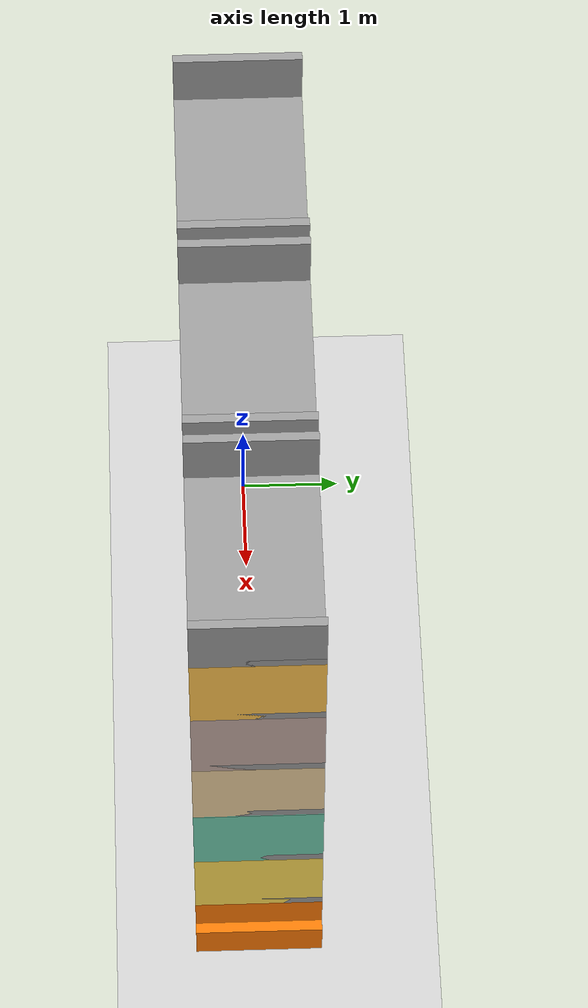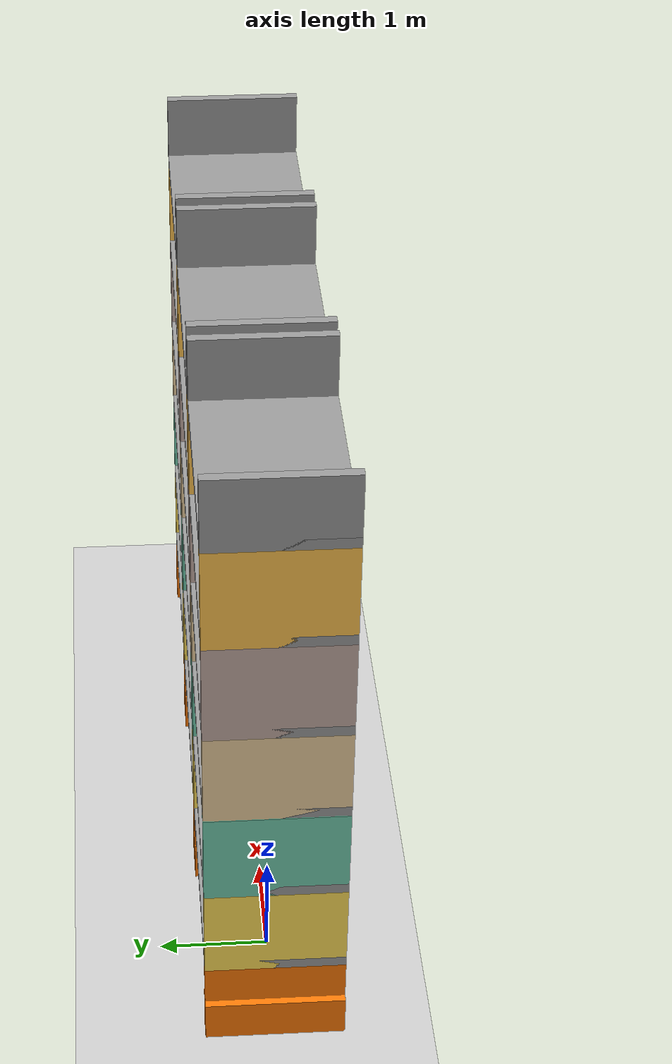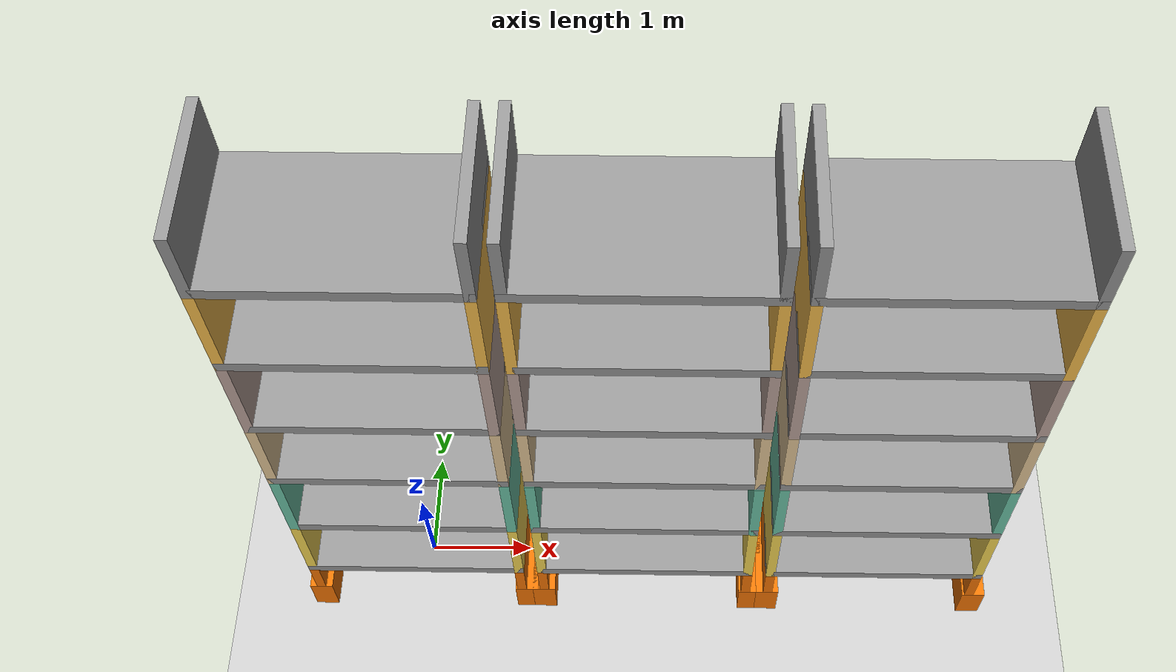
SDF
<sdf version="1.6">
 <world name="pseudo_world1">
  <model name="ground_plane">
   <static>1</static>
   <link name="link">
    <collision name="collision">
     <geometry><plane><normal>0 0 1</normal><size>100 100</size></plane></geometry>
     <surface><friction><ode><mu>100</mu><mu2>50</mu2></ode></friction></surface>
    </collision>
    <visual name="visual">
     <cast_shadows>0</cast_shadows>
     <geometry><plane><normal>0 0 1</normal><size>100 100</size></plane></geometry>
     <material>
      <script><uri>file://media/materials/scripts/gazebo.material</uri><name>Gazebo/Grey</name></script>
     </material>
    </visual>
   </link>
  </model>
  <model name="rack_whole">
   <static>1</static>
   <link name="Base_L">
    <collision name="Base_L_Collision">
     <geometry><box><size>1.258 0.22 0.4</size></box></geometry>
     <pose>0 0 0.2 0 -0 0</pose>
    </collision>
    <visual name="Base_L_Visual">
     <pose>0 0 0.2 0 -0 0</pose>
     <geometry><box><size>1.258 0.22 0.4</size></box></geometry>
     <material>
      <script><uri>file://media/materials/scripts/gazebo.material</uri><name>Gazebo/Grey</name></script>
      <ambient>0.996078 0.47451 0.0196078 1</ambient>
     </material>
     <meta><layer>0</layer></meta>
    </visual>
    <pose>-1.02 0 0 0 -0 1.5708</pose>
   </link>
   <link name="Base_R">
    <collision name="Base_R_Collision">
     <geometry><box><size>1.258 0.22 0.4</size></box></geometry>
     <pose>0 0 0.2 0 -0 0</pose>
    </collision>
    <visual name="Base_R_Visual">
     <pose>0 0 0.2 0 -0 0</pose>
     <geometry><box><size>1.258 0.22 0.4</size></box></geometry>
     <material>
      <script><uri>file://media/materials/scripts/gazebo.material</uri><name>Gazebo/Grey</name></script>
      <ambient>0.996078 0.47451 0.0196078 1</ambient>
     </material>
     <meta><layer>0</layer></meta>
    </visual>
    <pose>1.02 0 0 0 -0 1.5708</pose>
   </link>
   <link name="Wall_1_L">
    <collision name="Wall_1_L_Collision">
     <geometry><box><size>1.258 0.09 0.387</size></box></geometry>
     <pose>0 0 0.1935 0 -0 0</pose>
    </collision>
    <visual name="Wall_1_L_Visual">
     <pose>0 0 0.1935 0 -0 0</pose>
     <geometry><box><size>1.258 0.09 0.387</size></box></geometry>
     <material>
      <script><uri>file://media/materials/scripts/gazebo.material</uri><name>Gazebo/Grey</name></script>
      <ambient>0.996078 0.47451 0.0196078 1</ambient>
     </material>
     <meta><layer>1</layer></meta>
    </visual>
    <pose>-1.015 0 0.4 0 -0 1.5708</pose>
   </link>
   <link name="Wall_1_R">
    <collision name="Wall_1_R_Collision">
     <geometry><box><size>1.258 0.09 0.387</size></box></geometry>
     <pose>0 0 0.1935 0 -0 0</pose>
    </collision>
    <visual name="Wall_1_R_Visual">
     <pose>0 0 0.1935 0 -0 0</pose>
     <geometry><box><size>1.258 0.09 0.387</size></box></geometry>
     <material>
      <script><uri>file://media/materials/scripts/gazebo.material</uri><name>Gazebo/Grey</name></script>
      <ambient>0.996078 0.47451 0.0196078 1</ambient>
     </material>
     <meta><layer>1</layer></meta>
    </visual>
    <pose>0.975 0 0.4 0 -0 1.5708</pose>
   </link>
   <link name="Floor_1">
    <collision name="Floor_1_Collision">
     <geometry><box><size>2.08 1.258 0.1</size></box></geometry>
     <pose>0 0 0.05 0 -0 0</pose>
    </collision>
    <visual name="Floor_1_Visual">
     <pose>0 0 0.05 0 -0 0</pose>
     <geometry><box><size>2.08 1.258 0.1</size></box></geometry>
     <material>
      <script><uri>file://media/materials/scripts/gazebo.material</uri><name>Gazebo/Grey</name></script>
      <ambient>1 1 1 1</ambient>
     </material>
     <meta><layer>2</layer></meta>
    </visual>
    <pose>-0.02 0 0.787 0 -0 0</pose>
   </link>
   <link name="Wall_2_L">
    <collision name="Wall_2_L_Collision">
     <geometry><box><size>1.258 0.09 0.905</size></box></geometry>
     <pose>0 0 0.4525 0 -0 0</pose>
    </collision>
    <visual name="Wall_2_L_Visual">
     <pose>0 0 0.4525 0 -0 0</pose>
     <geometry><box><size>1.258 0.09 0.905</size></box></geometry>
     <material>
      <script><uri>file://media/materials/scripts/gazebo.material</uri><name>Gazebo/Grey</name></script>
      <ambient>1 0.87 0.34 1</ambient>
     </material>
     <meta><layer>2</layer></meta>
    </visual>
    <pose>-1.015 0 0.787 0 -0 1.5708</pose>
   </link>
   <link name="Wall_2_R">
    <collision name="Wall_2_R_Collision">
     <geometry><box><size>1.258 0.09 0.905</size></box></geometry>
     <pose>0 0 0.4525 0 -0 0</pose>
    </collision>
    <visual name="Wall_2_R_Visual">
     <pose>0 0 0.4525 0 -0 0</pose>
     <geometry><box><size>1.258 0.09 0.905</size></box></geometry>
     <material>
      <script><uri>file://media/materials/scripts/gazebo.material</uri><name>Gazebo/Grey</name></script>
      <ambient>1 0.87 0.34 1</ambient>
     </material>
     <meta><layer>2</layer></meta>
    </visual>
    <pose>0.975 0 0.787 0 -0 1.5708</pose>
   </link>
   <link name="Floor_2">
    <collision name="Floor_2_Collision">
     <geometry><box><size>2.08 1.258 0.1</size></box></geometry>
     <pose>0 0 0.05 0 -0 0</pose>
    </collision>
    <visual name="Floor_2_Visual">
     <pose>0 0 0.05 0 -0 0</pose>
     <geometry><box><size>2.08 1.258 0.1</size></box></geometry>
     <material>
      <script><uri>file://media/materials/scripts/gazebo.material</uri><name>Gazebo/Grey</name></script>
      <ambient>1 1 1 1</ambient>
     </material>
     <meta><layer>3</layer></meta>
    </visual>
    <pose>-0.02 0 1.692 0 -0 0</pose>
   </link>
   <link name="Wall_3_L">
    <collision name="Wall_3_L_Collision">
     <geometry><box><size>1.258 0.09 0.899</size></box></geometry>
     <pose>0 0 0.4495 0 -0 0</pose>
    </collision>
    <visual name="Wall_3_L_Visual">
     <pose>0 0 0.4495 0 -0 0</pose>
     <geometry><box><size>1.258 0.09 0.899</size></box></geometry>
     <material>
      <script><uri>file://media/materials/scripts/gazebo.material</uri><name>Gazebo/Grey</name></script>
      <ambient>0.435294 0.796078 0.67451 1</ambient>
     </material>
     <meta><layer>3</layer></meta>
    </visual>
    <pose>-1.015 0 1.692 0 -0 1.5708</pose>
   </link>
   <link name="Wall_3_R">
    <collision name="Wall_3_R_Collision">
     <geometry><box><size>1.258 0.09 0.899</size></box></geometry>
     <pose>0 0 0.4495 0 -0 0</pose>
    </collision>
    <visual name="Wall_3_R_Visual">
     <pose>0 0 0.4495 0 -0 0</pose>
     <geometry><box><size>1.258 0.09 0.899</size></box></geometry>
     <material>
      <script><uri>file://media/materials/scripts/gazebo.material</uri><name>Gazebo/Grey</name></script>
      <ambient>0.435294 0.796078 0.67451 1</ambient>
     </material>
     <meta><layer>3</layer></meta>
    </visual>
    <pose>0.975 0 1.692 0 -0 1.5708</pose>
   </link>
   <link name="Floor_3">
    <collision name="Floor_3_Collision">
     <geometry><box><size>2.08 1.258 0.1</size></box></geometry>
     <pose>0 0 0.05 0 -0 0</pose>
    </collision>
    <visual name="Floor_3_Visual">
     <pose>0 0 0.05 0 -0 0</pose>
     <geometry><box><size>2.08 1.258 0.1</size></box></geometry>
     <material>
      <script><uri>file://media/materials/scripts/gazebo.material</uri><name>Gazebo/Grey</name></script>
      <ambient>1 1 1 1</ambient>
     </material>
     <meta><layer>4</layer></meta>
    </visual>
    <pose>-0.02 0 2.597 0 -0 0</pose>
   </link>
   <link name="Wall_4_L">
    <collision name="Wall_4_L_Collision">
     <geometry><box><size>1.258 0.09 0.9</size></box></geometry>
     <pose>0 0 0.45 0 -0 0</pose>
    </collision>
    <visual name="Wall_4_L_Visual">
     <pose>0 0 0.45 0 -0 0</pose>
     <geometry><box><size>1.258 0.09 0.9</size></box></geometry>
     <material>
      <script><uri>file://media/materials/scripts/gazebo.material</uri><name>Gazebo/Grey</name></script>
      <ambient>0.921569 0.807843 0.615686 1</ambient>
     </material>
     <meta><layer>4</layer></meta>
    </visual>
    <pose>-1.015 0 2.597 0 -0 1.5708</pose>
   </link>
   <link name="Wall_4_R">
    <collision name="Wall_4_R_Collision">
     <geometry><box><size>1.258 0.09 0.9</size></box></geometry>
     <pose>0 0 0.45 0 -0 0</pose>
    </collision>
    <visual name="Wall_4_R_Visual">
     <pose>0 0 0.45 0 -0 0</pose>
     <geometry><box><size>1.258 0.09 0.9</size></box></geometry>
     <material>
      <script><uri>file://media/materials/scripts/gazebo.material</uri><name>Gazebo/Grey</name></script>
      <ambient>0.921569 0.807843 0.615686 1</ambient>
     </material>
     <meta><layer>4</layer></meta>
    </visual>
    <pose>0.975 0 2.597 0 -0 1.5708</pose>
   </link>
   <link name="Floor_4">
    <collision name="Floor_4_Collision">
     <geometry><box><size>2.08 1.258 0.1</size></box></geometry>
     <pose>0 0 0.05 0 -0 0</pose>
    </collision>
    <visual name="Floor_4_Visual">
     <pose>0 0 0.05 0 -0 0</pose>
     <geometry><box><size>2.08 1.258 0.1</size></box></geometry>
     <material>
      <script><uri>file://media/materials/scripts/gazebo.material</uri><name>Gazebo/Grey</name></script>
      <ambient>1 1 1 1</ambient>
     </material>
     <meta><layer>5</layer></meta>
    </visual>
    <pose>-0.02 0 3.497 0 -0 0</pose>
   </link>
   <link name="Wall_5_L">
    <collision name="Wall_5_L_Collision">
     <geometry><box><size>1.258 0.09 0.952</size></box></geometry>
     <pose>0 0 0.476 0 -0 0</pose>
    </collision>
    <visual name="Wall_5_L_Visual">
     <pose>0 0 0.476 0 -0 0</pose>
     <geometry><box><size>1.258 0.09 0.952</size></box></geometry>
     <material>
      <script><uri>file://media/materials/scripts/gazebo.material</uri><name>Gazebo/Grey</name></script>
      <ambient>0.760784 0.662745 0.627451 1</ambient>
     </material>
     <meta><layer>5</layer></meta>
    </visual>
    <pose>-1.015 0 3.497 0 -0 1.5708</pose>
   </link>
   <link name="Wall_5_R">
    <collision name="Wall_5_R_Collision">
     <geometry><box><size>1.258 0.09 0.952</size></box></geometry>
     <pose>0 0 0.476 0 -0 0</pose>
    </collision>
    <visual name="Wall_5_R_Visual">
     <pose>0 0 0.476 0 -0 0</pose>
     <geometry><box><size>1.258 0.09 0.952</size></box></geometry>
     <material>
      <script><uri>file://media/materials/scripts/gazebo.material</uri><name>Gazebo/Grey</name></script>
      <ambient>0.760784 0.662745 0.627451 1</ambient>
     </material>
     <meta><layer>5</layer></meta>
    </visual>
    <pose>0.975 0 3.497 0 -0 1.5708</pose>
   </link>
   <link name="Floor_5">
    <collision name="Floor_5_Collision">
     <geometry><box><size>2.08 1.258 0.1</size></box></geometry>
     <pose>0 0 0.05 0 -0 0</pose>
    </collision>
    <visual name="Floor_5_Visual">
     <pose>0 0 0.05 0 -0 0</pose>
     <geometry><box><size>2.08 1.258 0.1</size></box></geometry>
     <material>
      <script><uri>file://media/materials/scripts/gazebo.material</uri><name>Gazebo/Grey</name></script>
      <ambient>1 1 1 1</ambient>
     </material>
     <meta><layer>6</layer></meta>
    </visual>
    <pose>-0.02 0 4.449 0 -0 0</pose>
   </link>
   <link name="Wall_6_L">
    <collision name="Wall_6_L_Collision">
     <geometry><box><size>1.258 0.09 0.957</size></box></geometry>
     <pose>0 0 0.4785 0 -0 0</pose>
    </collision>
    <visual name="Wall_6_L_Visual">
     <pose>0 0 0.4785 0 -0 0</pose>
     <geometry><box><size>1.258 0.09 0.957</size></box></geometry>
     <material>
      <script><uri>file://media/materials/scripts/gazebo.material</uri><name>Gazebo/Grey</name></script>
      <ambient>1 0.764706 0.305882 1</ambient>
     </material>
     <meta><layer>6</layer></meta>
    </visual>
    <pose>-1.015 0 4.449 0 -0 1.5708</pose>
   </link>
   <link name="Wall_6_R">
    <collision name="Wall_6_R_Collision">
     <geometry><box><size>1.258 0.09 0.957</size></box></geometry>
     <pose>0 0 0.4785 0 -0 0</pose>
    </collision>
    <visual name="Wall_6_R_Visual">
     <pose>0 0 0.4785 0 -0 0</pose>
     <geometry><box><size>1.258 0.09 0.957</size></box></geometry>
     <material>
      <script><uri>file://media/materials/scripts/gazebo.material</uri><name>Gazebo/Grey</name></script>
      <ambient>1 0.764706 0.305882 1</ambient>
     </material>
     <meta><layer>6</layer></meta>
    </visual>
    <pose>0.975 0 4.449 0 -0 1.5708</pose>
   </link>
   <link name="Floor_6">
    <collision name="Floor_6_Collision">
     <geometry><box><size>2.08 1.258 0.1</size></box></geometry>
     <pose>0 0 0.05 0 -0 0</pose>
    </collision>
    <visual name="Floor_6_Visual">
     <pose>0 0 0.05 0 -0 0</pose>
     <geometry><box><size>2.08 1.258 0.1</size></box></geometry>
     <material>
      <script><uri>file://media/materials/scripts/gazebo.material</uri><name>Gazebo/Grey</name></script>
      <ambient>1 1 1 1</ambient>
     </material>
     <meta><layer>7</layer></meta>
    </visual>
    <pose>-0.02 0 5.406 0 -0 0</pose>
   </link>
   <link name="Wall_7_L">
    <collision name="Wall_7_L_Collision">
     <geometry><box><size>1.258 0.09 0.685</size></box></geometry>
     <pose>0 0 0.3425 0 -0 0</pose>
    </collision>
    <visual name="Wall_7_L_Visual">
     <pose>0 0 0.3425 0 -0 0</pose>
     <geometry><box><size>1.258 0.09 0.685</size></box></geometry>
     <material>
      <script><uri>file://media/materials/scripts/gazebo.material</uri><name>Gazebo/Grey</name></script>
      <ambient>1 1 1 1</ambient>
     </material>
     <meta><layer>7</layer></meta>
    </visual>
    <pose>-1.015 0 5.406 0 -0 1.5708</pose>
   </link>
   <link name="Wall_7_R">
    <collision name="Wall_7_R_Collision">
     <geometry><box><size>1.258 0.09 0.685</size></box></geometry>
     <pose>0 0 0.3425 0 -0 0</pose>
    </collision>
    <visual name="Wall_7_R_Visual">
     <pose>0 0 0.3425 0 -0 0</pose>
     <geometry><box><size>1.258 0.09 0.685</size></box></geometry>
     <material>
      <script><uri>file://media/materials/scripts/gazebo.material</uri><name>Gazebo/Grey</name></script>
      <ambient>1 1 1 1</ambient>
     </material>
     <meta><layer>7</layer></meta>
    </visual>
    <pose>0.975 0 5.406 0 -0 1.5708</pose>
   </link>
  </model>
  <model name="rack_whole_0">
   <static>1</static>
   <pose>2.21 0 0 0 -0 0</pose>
   <link name="Base_L">
    <collision name="Base_L_Collision">
     <geometry><box><size>1.258 0.22 0.4</size></box></geometry>
     <pose>0 0 0.2 0 -0 0</pose>
    </collision>
    <visual name="Base_L_Visual">
     <pose>0 0 0.2 0 -0 0</pose>
     <geometry><box><size>1.258 0.22 0.4</size></box></geometry>
     <material>
      <script><uri>file://media/materials/scripts/gazebo.material</uri><name>Gazebo/Grey</name></script>
      <ambient>0.996078 0.47451 0.0196078 1</ambient>
     </material>
     <meta><layer>0</layer></meta>
    </visual>
    <pose>-1.02 0 0 0 -0 1.5708</pose>
   </link>
   <link name="Base_R">
    <collision name="Base_R_Collision">
     <geometry><box><size>1.258 0.22 0.4</size></box></geometry>
     <pose>0 0 0.2 0 -0 0</pose>
    </collision>
    <visual name="Base_R_Visual">
     <pose>0 0 0.2 0 -0 0</pose>
     <geometry><box><size>1.258 0.22 0.4</size></box></geometry>
     <material>
      <script><uri>file://media/materials/scripts/gazebo.material</uri><name>Gazebo/Grey</name></script>
      <ambient>0.996078 0.47451 0.0196078 1</ambient>
     </material>
     <meta><layer>0</layer></meta>
    </visual>
    <pose>1.02 0 0 0 -0 1.5708</pose>
   </link>
   <link name="Wall_1_L">
    <collision name="Wall_1_L_Collision">
     <geometry><box><size>1.258 0.09 0.387</size></box></geometry>
     <pose>0 0 0.1935 0 -0 0</pose>
    </collision>
    <visual name="Wall_1_L_Visual">
     <pose>0 0 0.1935 0 -0 0</pose>
     <geometry><box><size>1.258 0.09 0.387</size></box></geometry>
     <material>
      <script><uri>file://media/materials/scripts/gazebo.material</uri><name>Gazebo/Grey</name></script>
      <ambient>0.996078 0.47451 0.0196078 1</ambient>
     </material>
     <meta><layer>1</layer></meta>
    </visual>
    <pose>-1.015 0 0.4 0 -0 1.5708</pose>
   </link>
   <link name="Wall_1_R">
    <collision name="Wall_1_R_Collision">
     <geometry><box><size>1.258 0.09 0.387</size></box></geometry>
     <pose>0 0 0.1935 0 -0 0</pose>
    </collision>
    <visual name="Wall_1_R_Visual">
     <pose>0 0 0.1935 0 -0 0</pose>
     <geometry><box><size>1.258 0.09 0.387</size></box></geometry>
     <material>
      <script><uri>file://media/materials/scripts/gazebo.material</uri><name>Gazebo/Grey</name></script>
      <ambient>0.996078 0.47451 0.0196078 1</ambient>
     </material>
     <meta><layer>1</layer></meta>
    </visual>
    <pose>0.975 0 0.4 0 -0 1.5708</pose>
   </link>
   <link name="Floor_1">
    <collision name="Floor_1_Collision">
     <geometry><box><size>2.08 1.258 0.1</size></box></geometry>
     <pose>0 0 0.05 0 -0 0</pose>
    </collision>
    <visual name="Floor_1_Visual">
     <pose>0 0 0.05 0 -0 0</pose>
     <geometry><box><size>2.08 1.258 0.1</size></box></geometry>
     <material>
      <script><uri>file://media/materials/scripts/gazebo.material</uri><name>Gazebo/Grey</name></script>
      <ambient>1 1 1 1</ambient>
     </material>
     <meta><layer>2</layer></meta>
    </visual>
    <pose>-0.02 0 0.787 0 -0 0</pose>
   </link>
   <link name="Wall_2_L">
    <collision name="Wall_2_L_Collision">
     <geometry><box><size>1.258 0.09 0.905</size></box></geometry>
     <pose>0 0 0.4525 0 -0 0</pose>
    </collision>
    <visual name="Wall_2_L_Visual">
     <pose>0 0 0.4525 0 -0 0</pose>
     <geometry><box><size>1.258 0.09 0.905</size></box></geometry>
     <material>
      <script><uri>file://media/materials/scripts/gazebo.material</uri><name>Gazebo/Grey</name></script>
      <ambient>1 0.87 0.34 1</ambient>
     </material>
     <meta><layer>2</layer></meta>
    </visual>
    <pose>-1.015 0 0.787 0 -0 1.5708</pose>
   </link>
   <link name="Wall_2_R">
    <collision name="Wall_2_R_Collision">
     <geometry><box><size>1.258 0.09 0.905</size></box></geometry>
     <pose>0 0 0.4525 0 -0 0</pose>
    </collision>
    <visual name="Wall_2_R_Visual">
     <pose>0 0 0.4525 0 -0 0</pose>
     <geometry><box><size>1.258 0.09 0.905</size></box></geometry>
     <material>
      <script><uri>file://media/materials/scripts/gazebo.material</uri><name>Gazebo/Grey</name></script>
      <ambient>1 0.87 0.34 1</ambient>
     </material>
     <meta><layer>2</layer></meta>
    </visual>
    <pose>0.975 0 0.787 0 -0 1.5708</pose>
   </link>
   <link name="Floor_2">
    <collision name="Floor_2_Collision">
     <geometry><box><size>2.08 1.258 0.1</size></box></geometry>
     <pose>0 0 0.05 0 -0 0</pose>
    </collision>
    <visual name="Floor_2_Visual">
     <pose>0 0 0.05 0 -0 0</pose>
     <geometry><box><size>2.08 1.258 0.1</size></box></geometry>
     <material>
      <script><uri>file://media/materials/scripts/gazebo.material</uri><name>Gazebo/Grey</name></script>
      <ambient>1 1 1 1</ambient>
     </material>
     <meta><layer>3</layer></meta>
    </visual>
    <pose>-0.02 0 1.692 0 -0 0</pose>
   </link>
   <link name="Wall_3_L">
    <collision name="Wall_3_L_Collision">
     <geometry><box><size>1.258 0.09 0.899</size></box></geometry>
     <pose>0 0 0.4495 0 -0 0</pose>
    </collision>
    <visual name="Wall_3_L_Visual">
     <pose>0 0 0.4495 0 -0 0</pose>
     <geometry><box><size>1.258 0.09 0.899</size></box></geometry>
     <material>
      <script><uri>file://media/materials/scripts/gazebo.material</uri><name>Gazebo/Grey</name></script>
      <ambient>0.435294 0.796078 0.67451 1</ambient>
     </material>
     <meta><layer>3</layer></meta>
    </visual>
    <pose>-1.015 0 1.692 0 -0 1.5708</pose>
   </link>
   <link name="Wall_3_R">
    <collision name="Wall_3_R_Collision">
     <geometry><box><size>1.258 0.09 0.899</size></box></geometry>
     <pose>0 0 0.4495 0 -0 0</pose>
    </collision>
    <visual name="Wall_3_R_Visual">
     <pose>0 0 0.4495 0 -0 0</pose>
     <geometry><box><size>1.258 0.09 0.899</size></box></geometry>
     <material>
      <script><uri>file://media/materials/scripts/gazebo.material</uri><name>Gazebo/Grey</name></script>
      <ambient>0.435294 0.796078 0.67451 1</ambient>
     </material>
     <meta><layer>3</layer></meta>
    </visual>
    <pose>0.975 0 1.692 0 -0 1.5708</pose>
   </link>
   <link name="Floor_3">
    <collision name="Floor_3_Collision">
     <geometry><box><size>2.08 1.258 0.1</size></box></geometry>
     <pose>0 0 0.05 0 -0 0</pose>
    </collision>
    <visual name="Floor_3_Visual">
     <pose>0 0 0.05 0 -0 0</pose>
     <geometry><box><size>2.08 1.258 0.1</size></box></geometry>
     <material>
      <script><uri>file://media/materials/scripts/gazebo.material</uri><name>Gazebo/Grey</name></script>
      <ambient>1 1 1 1</ambient>
     </material>
     <meta><layer>4</layer></meta>
    </visual>
    <pose>-0.02 0 2.597 0 -0 0</pose>
   </link>
   <link name="Wall_4_L">
    <collision name="Wall_4_L_Collision">
     <geometry><box><size>1.258 0.09 0.9</size></box></geometry>
     <pose>0 0 0.45 0 -0 0</pose>
    </collision>
    <visual name="Wall_4_L_Visual">
     <pose>0 0 0.45 0 -0 0</pose>
     <geometry><box><size>1.258 0.09 0.9</size></box></geometry>
     <material>
      <script><uri>file://media/materials/scripts/gazebo.material</uri><name>Gazebo/Grey</name></script>
      <ambient>0.921569 0.807843 0.615686 1</ambient>
     </material>
     <meta><layer>4</layer></meta>
    </visual>
    <pose>-1.015 0 2.597 0 -0 1.5708</pose>
   </link>
   <link name="Wall_4_R">
    <collision name="Wall_4_R_Collision">
     <geometry><box><size>1.258 0.09 0.9</size></box></geometry>
     <pose>0 0 0.45 0 -0 0</pose>
    </collision>
    <visual name="Wall_4_R_Visual">
     <pose>0 0 0.45 0 -0 0</pose>
     <geometry><box><size>1.258 0.09 0.9</size></box></geometry>
     <material>
      <script><uri>file://media/materials/scripts/gazebo.material</uri><name>Gazebo/Grey</name></script>
      <ambient>0.921569 0.807843 0.615686 1</ambient>
     </material>
     <meta><layer>4</layer></meta>
    </visual>
    <pose>0.975 0 2.597 0 -0 1.5708</pose>
   </link>
   <link name="Floor_4">
    <collision name="Floor_4_Collision">
     <geometry><box><size>2.08 1.258 0.1</size></box></geometry>
     <pose>0 0 0.05 0 -0 0</pose>
    </collision>
    <visual name="Floor_4_Visual">
     <pose>0 0 0.05 0 -0 0</pose>
     <geometry><box><size>2.08 1.258 0.1</size></box></geometry>
     <material>
      <script><uri>file://media/materials/scripts/gazebo.material</uri><name>Gazebo/Grey</name></script>
      <ambient>1 1 1 1</ambient>
     </material>
     <meta><layer>5</layer></meta>
    </visual>
    <pose>-0.02 0 3.497 0 -0 0</pose>
   </link>
   <link name="Wall_5_L">
    <collision name="Wall_5_L_Collision">
     <geometry><box><size>1.258 0.09 0.952</size></box></geometry>
     <pose>0 0 0.476 0 -0 0</pose>
    </collision>
    <visual name="Wall_5_L_Visual">
     <pose>0 0 0.476 0 -0 0</pose>
     <geometry><box><size>1.258 0.09 0.952</size></box></geometry>
     <material>
      <script><uri>file://media/materials/scripts/gazebo.material</uri><name>Gazebo/Grey</name></script>
      <ambient>0.760784 0.662745 0.627451 1</ambient>
     </material>
     <meta><layer>5</layer></meta>
    </visual>
    <pose>-1.015 0 3.497 0 -0 1.5708</pose>
   </link>
   <link name="Wall_5_R">
    <collision name="Wall_5_R_Collision">
     <geometry><box><size>1.258 0.09 0.952</size></box></geometry>
     <pose>0 0 0.476 0 -0 0</pose>
    </collision>
    <visual name="Wall_5_R_Visual">
     <pose>0 0 0.476 0 -0 0</pose>
     <geometry><box><size>1.258 0.09 0.952</size></box></geometry>
     <material>
      <script><uri>file://media/materials/scripts/gazebo.material</uri><name>Gazebo/Grey</name></script>
      <ambient>0.760784 0.662745 0.627451 1</ambient>
     </material>
     <meta><layer>5</layer></meta>
    </visual>
    <pose>0.975 0 3.497 0 -0 1.5708</pose>
   </link>
   <link name="Floor_5">
    <collision name="Floor_5_Collision">
     <geometry><box><size>2.08 1.258 0.1</size></box></geometry>
     <pose>0 0 0.05 0 -0 0</pose>
    </collision>
    <visual name="Floor_5_Visual">
     <pose>0 0 0.05 0 -0 0</pose>
     <geometry><box><size>2.08 1.258 0.1</size></box></geometry>
     <material>
      <script><uri>file://media/materials/scripts/gazebo.material</uri><name>Gazebo/Grey</name></script>
      <ambient>1 1 1 1</ambient>
     </material>
     <meta><layer>6</layer></meta>
    </visual>
    <pose>-0.02 0 4.449 0 -0 0</pose>
   </link>
   <link name="Wall_6_L">
    <collision name="Wall_6_L_Collision">
     <geometry><box><size>1.258 0.09 0.957</size></box></geometry>
     <pose>0 0 0.4785 0 -0 0</pose>
    </collision>
    <visual name="Wall_6_L_Visual">
     <pose>0 0 0.4785 0 -0 0</pose>
     <geometry><box><size>1.258 0.09 0.957</size></box></geometry>
     <material>
      <script><uri>file://media/materials/scripts/gazebo.material</uri><name>Gazebo/Grey</name></script>
      <ambient>1 0.764706 0.305882 1</ambient>
     </material>
     <meta><layer>6</layer></meta>
    </visual>
    <pose>-1.015 0 4.449 0 -0 1.5708</pose>
   </link>
   <link name="Wall_6_R">
    <collision name="Wall_6_R_Collision">
     <geometry><box><size>1.258 0.09 0.957</size></box></geometry>
     <pose>0 0 0.4785 0 -0 0</pose>
    </collision>
    <visual name="Wall_6_R_Visual">
     <pose>0 0 0.4785 0 -0 0</pose>
     <geometry><box><size>1.258 0.09 0.957</size></box></geometry>
     <material>
      <script><uri>file://media/materials/scripts/gazebo.material</uri><name>Gazebo/Grey</name></script>
      <ambient>1 0.764706 0.305882 1</ambient>
     </material>
     <meta><layer>6</layer></meta>
    </visual>
    <pose>0.975 0 4.449 0 -0 1.5708</pose>
   </link>
   <link name="Floor_6">
    <collision name="Floor_6_Collision">
     <geometry><box><size>2.08 1.258 0.1</size></box></geometry>
     <pose>0 0 0.05 0 -0 0</pose>
    </collision>
    <visual name="Floor_6_Visual">
     <pose>0 0 0.05 0 -0 0</pose>
     <geometry><box><size>2.08 1.258 0.1</size></box></geometry>
     <material>
      <script><uri>file://media/materials/scripts/gazebo.material</uri><name>Gazebo/Grey</name></script>
      <ambient>1 1 1 1</ambient>
     </material>
     <meta><layer>7</layer></meta>
    </visual>
    <pose>-0.02 0 5.406 0 -0 0</pose>
   </link>
   <link name="Wall_7_L">
    <collision name="Wall_7_L_Collision">
     <geometry><box><size>1.258 0.09 0.685</size></box></geometry>
     <pose>0 0 0.3425 0 -0 0</pose>
    </collision>
    <visual name="Wall_7_L_Visual">
     <pose>0 0 0.3425 0 -0 0</pose>
     <geometry><box><size>1.258 0.09 0.685</size></box></geometry>
     <material>
      <script><uri>file://media/materials/scripts/gazebo.material</uri><name>Gazebo/Grey</name></script>
      <ambient>1 1 1 1</ambient>
     </material>
     <meta><layer>7</layer></meta>
    </visual>
    <pose>-1.015 0 5.406 0 -0 1.5708</pose>
   </link>
   <link name="Wall_7_R">
    <collision name="Wall_7_R_Collision">
     <geometry><box><size>1.258 0.09 0.685</size></box></geometry>
     <pose>0 0 0.3425 0 -0 0</pose>
    </collision>
    <visual name="Wall_7_R_Visual">
     <pose>0 0 0.3425 0 -0 0</pose>
     <geometry><box><size>1.258 0.09 0.685</size></box></geometry>
     <material>
      <script><uri>file://media/materials/scripts/gazebo.material</uri><name>Gazebo/Grey</name></script>
      <ambient>1 1 1 1</ambient>
     </material>
     <meta><layer>7</layer></meta>
    </visual>
    <pose>0.975 0 5.406 0 -0 1.5708</pose>
   </link>
  </model>
  <model name="rack_whole_1">
   <static>1</static>
   <pose>4.42 0 0 0 -0 0</pose>
   <link name="Base_L">
    <collision name="Base_L_Collision">
     <geometry><box><size>1.258 0.22 0.4</size></box></geometry>
     <pose>0 0 0.2 0 -0 0</pose>
    </collision>
    <visual name="Base_L_Visual">
     <pose>0 0 0.2 0 -0 0</pose>
     <geometry><box><size>1.258 0.22 0.4</size></box></geometry>
     <material>
      <script><uri>file://media/materials/scripts/gazebo.material</uri><name>Gazebo/Grey</name></script>
      <ambient>0.996078 0.47451 0.0196078 1</ambient>
     </material>
     <meta><layer>0</layer></meta>
    </visual>
    <pose>-1.02 0 0 0 -0 1.5708</pose>
   </link>
   <link name="Base_R">
    <collision name="Base_R_Collision">
     <geometry><box><size>1.258 0.22 0.4</size></box></geometry>
     <pose>0 0 0.2 0 -0 0</pose>
    </collision>
    <visual name="Base_R_Visual">
     <pose>0 0 0.2 0 -0 0</pose>
     <geometry><box><size>1.258 0.22 0.4</size></box></geometry>
     <material>
      <script><uri>file://media/materials/scripts/gazebo.material</uri><name>Gazebo/Grey</name></script>
      <ambient>0.996078 0.47451 0.0196078 1</ambient>
     </material>
     <meta><layer>0</layer></meta>
    </visual>
    <pose>1.02 0 0 0 -0 1.5708</pose>
   </link>
   <link name="Wall_1_L">
    <collision name="Wall_1_L_Collision">
     <geometry><box><size>1.258 0.09 0.387</size></box></geometry>
     <pose>0 0 0.1935 0 -0 0</pose>
    </collision>
    <visual name="Wall_1_L_Visual">
     <pose>0 0 0.1935 0 -0 0</pose>
     <geometry><box><size>1.258 0.09 0.387</size></box></geometry>
     <material>
      <script><uri>file://media/materials/scripts/gazebo.material</uri><name>Gazebo/Grey</name></script>
      <ambient>0.996078 0.47451 0.0196078 1</ambient>
     </material>
     <meta><layer>1</layer></meta>
    </visual>
    <pose>-1.015 0 0.4 0 -0 1.5708</pose>
   </link>
   <link name="Wall_1_R">
    <collision name="Wall_1_R_Collision">
     <geometry><box><size>1.258 0.09 0.387</size></box></geometry>
     <pose>0 0 0.1935 0 -0 0</pose>
    </collision>
    <visual name="Wall_1_R_Visual">
     <pose>0 0 0.1935 0 -0 0</pose>
     <geometry><box><size>1.258 0.09 0.387</size></box></geometry>
     <material>
      <script><uri>file://media/materials/scripts/gazebo.material</uri><name>Gazebo/Grey</name></script>
      <ambient>0.996078 0.47451 0.0196078 1</ambient>
     </material>
     <meta><layer>1</layer></meta>
    </visual>
    <pose>0.975 0 0.4 0 -0 1.5708</pose>
   </link>
   <link name="Floor_1">
    <collision name="Floor_1_Collision">
     <geometry><box><size>2.08 1.258 0.1</size></box></geometry>
     <pose>0 0 0.05 0 -0 0</pose>
    </collision>
    <visual name="Floor_1_Visual">
     <pose>0 0 0.05 0 -0 0</pose>
     <geometry><box><size>2.08 1.258 0.1</size></box></geometry>
     <material>
      <script><uri>file://media/materials/scripts/gazebo.material</uri><name>Gazebo/Grey</name></script>
      <ambient>1 1 1 1</ambient>
     </material>
     <meta><layer>2</layer></meta>
    </visual>
    <pose>-0.02 0 0.787 0 -0 0</pose>
   </link>
   <link name="Wall_2_L">
    <collision name="Wall_2_L_Collision">
     <geometry><box><size>1.258 0.09 0.905</size></box></geometry>
     <pose>0 0 0.4525 0 -0 0</pose>
    </collision>
    <visual name="Wall_2_L_Visual">
     <pose>0 0 0.4525 0 -0 0</pose>
     <geometry><box><size>1.258 0.09 0.905</size></box></geometry>
     <material>
      <script><uri>file://media/materials/scripts/gazebo.material</uri><name>Gazebo/Grey</name></script>
      <ambient>1 0.87 0.34 1</ambient>
     </material>
     <meta><layer>2</layer></meta>
    </visual>
    <pose>-1.015 0 0.787 0 -0 1.5708</pose>
   </link>
   <link name="Wall_2_R">
    <collision name="Wall_2_R_Collision">
     <geometry><box><size>1.258 0.09 0.905</size></box></geometry>
     <pose>0 0 0.4525 0 -0 0</pose>
    </collision>
    <visual name="Wall_2_R_Visual">
     <pose>0 0 0.4525 0 -0 0</pose>
     <geometry><box><size>1.258 0.09 0.905</size></box></geometry>
     <material>
      <script><uri>file://media/materials/scripts/gazebo.material</uri><name>Gazebo/Grey</name></script>
      <ambient>1 0.87 0.34 1</ambient>
     </material>
     <meta><layer>2</layer></meta>
    </visual>
    <pose>0.975 0 0.787 0 -0 1.5708</pose>
   </link>
   <link name="Floor_2">
    <collision name="Floor_2_Collision">
     <geometry><box><size>2.08 1.258 0.1</size></box></geometry>
     <pose>0 0 0.05 0 -0 0</pose>
    </collision>
    <visual name="Floor_2_Visual">
     <pose>0 0 0.05 0 -0 0</pose>
     <geometry><box><size>2.08 1.258 0.1</size></box></geometry>
     <material>
      <script><uri>file://media/materials/scripts/gazebo.material</uri><name>Gazebo/Grey</name></script>
      <ambient>1 1 1 1</ambient>
     </material>
     <meta><layer>3</layer></meta>
    </visual>
    <pose>-0.02 0 1.692 0 -0 0</pose>
   </link>
   <link name="Wall_3_L">
    <collision name="Wall_3_L_Collision">
     <geometry><box><size>1.258 0.09 0.899</size></box></geometry>
     <pose>0 0 0.4495 0 -0 0</pose>
    </collision>
    <visual name="Wall_3_L_Visual">
     <pose>0 0 0.4495 0 -0 0</pose>
     <geometry><box><size>1.258 0.09 0.899</size></box></geometry>
     <material>
      <script><uri>file://media/materials/scripts/gazebo.material</uri><name>Gazebo/Grey</name></script>
      <ambient>0.435294 0.796078 0.67451 1</ambient>
     </material>
     <meta><layer>3</layer></meta>
    </visual>
    <pose>-1.015 0 1.692 0 -0 1.5708</pose>
   </link>
   <link name="Wall_3_R">
    <collision name="Wall_3_R_Collision">
     <geometry><box><size>1.258 0.09 0.899</size></box></geometry>
     <pose>0 0 0.4495 0 -0 0</pose>
    </collision>
    <visual name="Wall_3_R_Visual">
     <pose>0 0 0.4495 0 -0 0</pose>
     <geometry><box><size>1.258 0.09 0.899</size></box></geometry>
     <material>
      <script><uri>file://media/materials/scripts/gazebo.material</uri><name>Gazebo/Grey</name></script>
      <ambient>0.435294 0.796078 0.67451 1</ambient>
     </material>
     <meta><layer>3</layer></meta>
    </visual>
    <pose>0.975 0 1.692 0 -0 1.5708</pose>
   </link>
   <link name="Floor_3">
    <collision name="Floor_3_Collision">
     <geometry><box><size>2.08 1.258 0.1</size></box></geometry>
     <pose>0 0 0.05 0 -0 0</pose>
    </collision>
    <visual name="Floor_3_Visual">
     <pose>0 0 0.05 0 -0 0</pose>
     <geometry><box><size>2.08 1.258 0.1</size></box></geometry>
     <material>
      <script><uri>file://media/materials/scripts/gazebo.material</uri><name>Gazebo/Grey</name></script>
      <ambient>1 1 1 1</ambient>
     </material>
     <meta><layer>4</layer></meta>
    </visual>
    <pose>-0.02 0 2.597 0 -0 0</pose>
   </link>
   <link name="Wall_4_L">
    <collision name="Wall_4_L_Collision">
     <geometry><box><size>1.258 0.09 0.9</size></box></geometry>
     <pose>0 0 0.45 0 -0 0</pose>
    </collision>
    <visual name="Wall_4_L_Visual">
     <pose>0 0 0.45 0 -0 0</pose>
     <geometry><box><size>1.258 0.09 0.9</size></box></geometry>
     <material>
      <script><uri>file://media/materials/scripts/gazebo.material</uri><name>Gazebo/Grey</name></script>
      <ambient>0.921569 0.807843 0.615686 1</ambient>
     </material>
     <meta><layer>4</layer></meta>
    </visual>
    <pose>-1.015 0 2.597 0 -0 1.5708</pose>
   </link>
   <link name="Wall_4_R">
    <collision name="Wall_4_R_Collision">
     <geometry><box><size>1.258 0.09 0.9</size></box></geometry>
     <pose>0 0 0.45 0 -0 0</pose>
    </collision>
    <visual name="Wall_4_R_Visual">
     <pose>0 0 0.45 0 -0 0</pose>
     <geometry><box><size>1.258 0.09 0.9</size></box></geometry>
     <material>
      <script><uri>file://media/materials/scripts/gazebo.material</uri><name>Gazebo/Grey</name></script>
      <ambient>0.921569 0.807843 0.615686 1</ambient>
     </material>
     <meta><layer>4</layer></meta>
    </visual>
    <pose>0.975 0 2.597 0 -0 1.5708</pose>
   </link>
   <link name="Floor_4">
    <collision name="Floor_4_Collision">
     <geometry><box><size>2.08 1.258 0.1</size></box></geometry>
     <pose>0 0 0.05 0 -0 0</pose>
    </collision>
    <visual name="Floor_4_Visual">
     <pose>0 0 0.05 0 -0 0</pose>
     <geometry><box><size>2.08 1.258 0.1</size></box></geometry>
     <material>
      <script><uri>file://media/materials/scripts/gazebo.material</uri><name>Gazebo/Grey</name></script>
      <ambient>1 1 1 1</ambient>
     </material>
     <meta><layer>5</layer></meta>
    </visual>
    <pose>-0.02 0 3.497 0 -0 0</pose>
   </link>
   <link name="Wall_5_L">
    <collision name="Wall_5_L_Collision">
     <geometry><box><size>1.258 0.09 0.952</size></box></geometry>
     <pose>0 0 0.476 0 -0 0</pose>
    </collision>
    <visual name="Wall_5_L_Visual">
     <pose>0 0 0.476 0 -0 0</pose>
     <geometry><box><size>1.258 0.09 0.952</size></box></geometry>
     <material>
      <script><uri>file://media/materials/scripts/gazebo.material</uri><name>Gazebo/Grey</name></script>
      <ambient>0.760784 0.662745 0.627451 1</ambient>
     </material>
     <meta><layer>5</layer></meta>
    </visual>
    <pose>-1.015 0 3.497 0 -0 1.5708</pose>
   </link>
   <link name="Wall_5_R">
    <collision name="Wall_5_R_Collision">
     <geometry><box><size>1.258 0.09 0.952</size></box></geometry>
     <pose>0 0 0.476 0 -0 0</pose>
    </collision>
    <visual name="Wall_5_R_Visual">
     <pose>0 0 0.476 0 -0 0</pose>
     <geometry><box><size>1.258 0.09 0.952</size></box></geometry>
     <material>
      <script><uri>file://media/materials/scripts/gazebo.material</uri><name>Gazebo/Grey</name></script>
      <ambient>0.760784 0.662745 0.627451 1</ambient>
     </material>
     <meta><layer>5</layer></meta>
    </visual>
    <pose>0.975 0 3.497 0 -0 1.5708</pose>
   </link>
   <link name="Floor_5">
    <collision name="Floor_5_Collision">
     <geometry><box><size>2.08 1.258 0.1</size></box></geometry>
     <pose>0 0 0.05 0 -0 0</pose>
    </collision>
    <visual name="Floor_5_Visual">
     <pose>0 0 0.05 0 -0 0</pose>
     <geometry><box><size>2.08 1.258 0.1</size></box></geometry>
     <material>
      <script><uri>file://media/materials/scripts/gazebo.material</uri><name>Gazebo/Grey</name></script>
      <ambient>1 1 1 1</ambient>
     </material>
     <meta><layer>6</layer></meta>
    </visual>
    <pose>-0.02 0 4.449 0 -0 0</pose>
   </link>
   <link name="Wall_6_L">
    <collision name="Wall_6_L_Collision">
     <geometry><box><size>1.258 0.09 0.957</size></box></geometry>
     <pose>0 0 0.4785 0 -0 0</pose>
    </collision>
    <visual name="Wall_6_L_Visual">
     <pose>0 0 0.4785 0 -0 0</pose>
     <geometry><box><size>1.258 0.09 0.957</size></box></geometry>
     <material>
      <script><uri>file://media/materials/scripts/gazebo.material</uri><name>Gazebo/Grey</name></script>
      <ambient>1 0.764706 0.305882 1</ambient>
     </material>
     <meta><layer>6</layer></meta>
    </visual>
    <pose>-1.015 0 4.449 0 -0 1.5708</pose>
   </link>
   <link name="Wall_6_R">
    <collision name="Wall_6_R_Collision">
     <geometry><box><size>1.258 0.09 0.957</size></box></geometry>
     <pose>0 0 0.4785 0 -0 0</pose>
    </collision>
    <visual name="Wall_6_R_Visual">
     <pose>0 0 0.4785 0 -0 0</pose>
     <geometry><box><size>1.258 0.09 0.957</size></box></geometry>
     <material>
      <script><uri>file://media/materials/scripts/gazebo.material</uri><name>Gazebo/Grey</name></script>
      <ambient>1 0.764706 0.305882 1</ambient>
     </material>
     <meta><layer>6</layer></meta>
    </visual>
    <pose>0.975 0 4.449 0 -0 1.5708</pose>
   </link>
   <link name="Floor_6">
    <collision name="Floor_6_Collision">
     <geometry><box><size>2.08 1.258 0.1</size></box></geometry>
     <pose>0 0 0.05 0 -0 0</pose>
    </collision>
    <visual name="Floor_6_Visual">
     <pose>0 0 0.05 0 -0 0</pose>
     <geometry><box><size>2.08 1.258 0.1</size></box></geometry>
     <material>
      <script><uri>file://media/materials/scripts/gazebo.material</uri><name>Gazebo/Grey</name></script>
      <ambient>1 1 1 1</ambient>
     </material>
     <meta><layer>7</layer></meta>
    </visual>
    <pose>-0.02 0 5.406 0 -0 0</pose>
   </link>
   <link name="Wall_7_L">
    <collision name="Wall_7_L_Collision">
     <geometry><box><size>1.258 0.09 0.685</size></box></geometry>
     <pose>0 0 0.3425 0 -0 0</pose>
    </collision>
    <visual name="Wall_7_L_Visual">
     <pose>0 0 0.3425 0 -0 0</pose>
     <geometry><box><size>1.258 0.09 0.685</size></box></geometry>
     <material>
      <script><uri>file://media/materials/scripts/gazebo.material</uri><name>Gazebo/Grey</name></script>
      <ambient>1 1 1 1</ambient>
     </material>
     <meta><layer>7</layer></meta>
    </visual>
    <pose>-1.015 0 5.406 0 -0 1.5708</pose>
   </link>
   <link name="Wall_7_R">
    <collision name="Wall_7_R_Collision">
     <geometry><box><size>1.258 0.09 0.685</size></box></geometry>
     <pose>0 0 0.3425 0 -0 0</pose>
    </collision>
    <visual name="Wall_7_R_Visual">
     <pose>0 0 0.3425 0 -0 0</pose>
     <geometry><box><size>1.258 0.09 0.685</size></box></geometry>
     <material>
      <script><uri>file://media/materials/scripts/gazebo.material</uri><name>Gazebo/Grey</name></script>
      <ambient>1 1 1 1</ambient>
     </material>
     <meta><layer>7</layer></meta>
    </visual>
    <pose>0.975 0 5.406 0 -0 1.5708</pose>
   </link>
  </model>
 </world>
</sdf>
